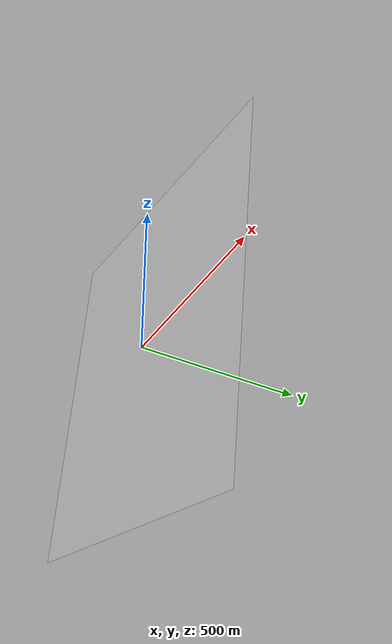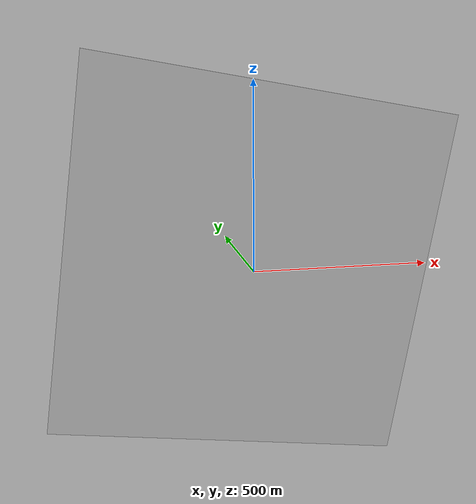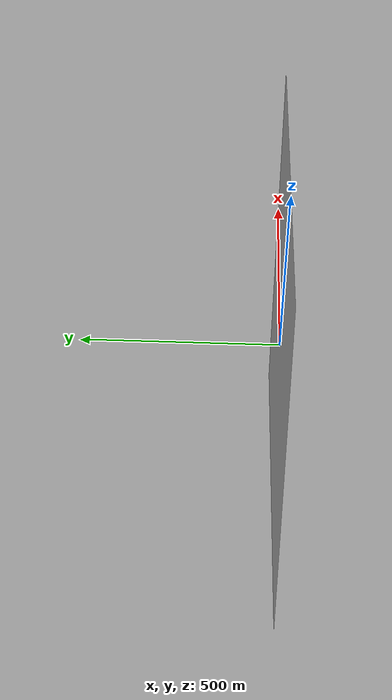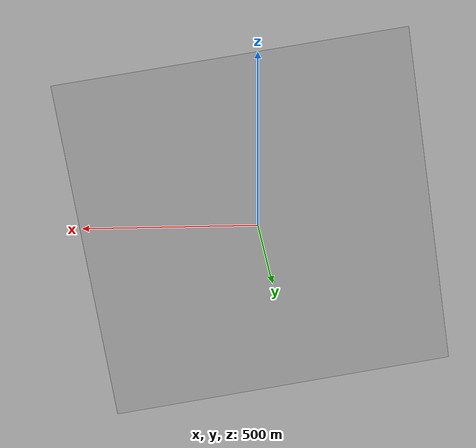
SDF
<?xml version="1.0" ?>
<sdf version="1.6">

    <model name="outside">
        <static>true</static>
        <pose>0 0 -5 0 30 0</pose>
        <link name='enviroment'>
            <visual name='visual'>
              <geometry>
                <box>
                    <size>1000 0 1000</size>
                </box>
              </geometry>
              <material>
                <ambient>0.8 0.8 0.8 1</ambient>
                <diffuse>0.8 0.8 0.8 1</diffuse>
                <pbr>
                    <metal>
                      <albedo_map>happy.png</albedo_map>
                      <normal_map>happy.png</normal_map>
                    </metal>
                  </pbr>
              </material>
            </visual>
        </link>
    </model>

</sdf>
